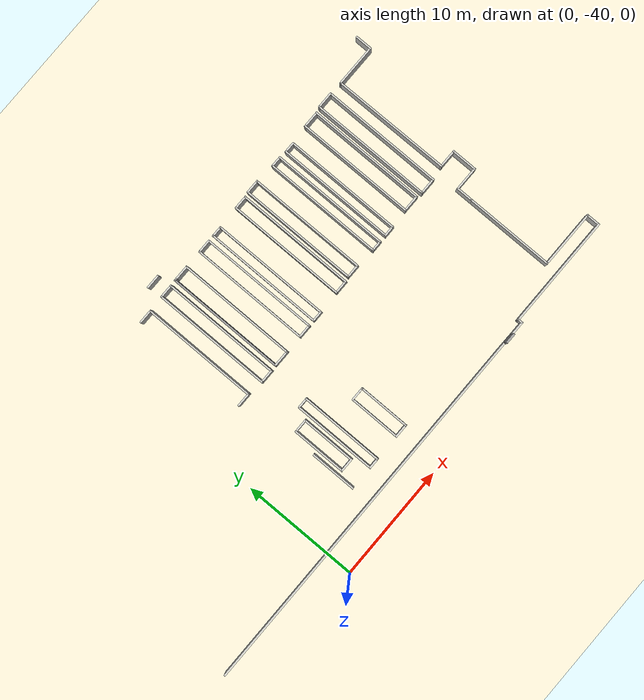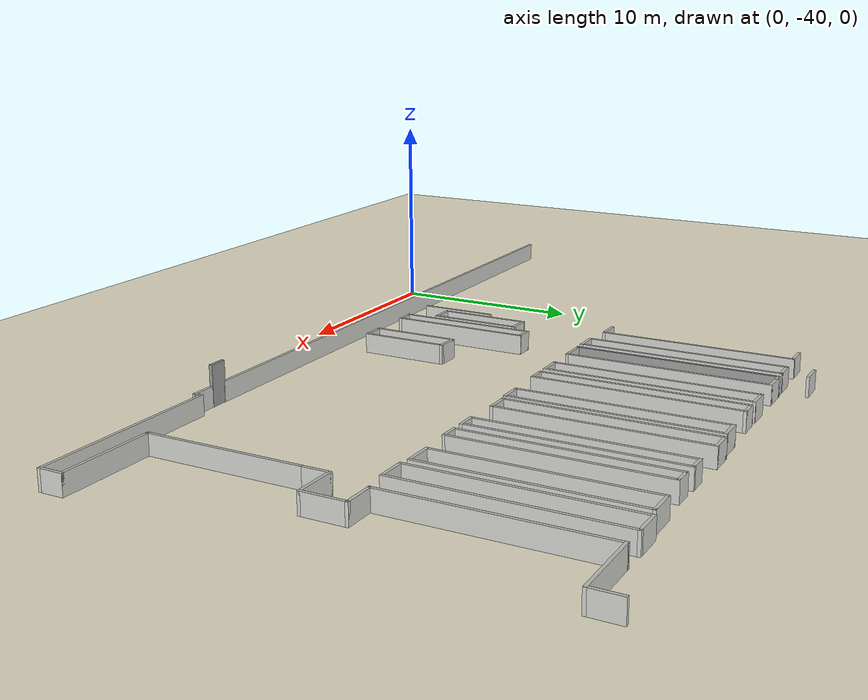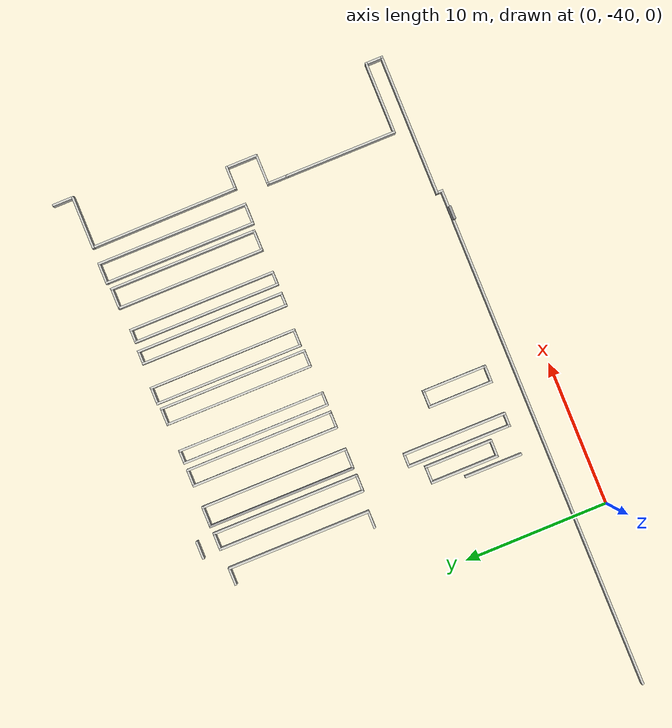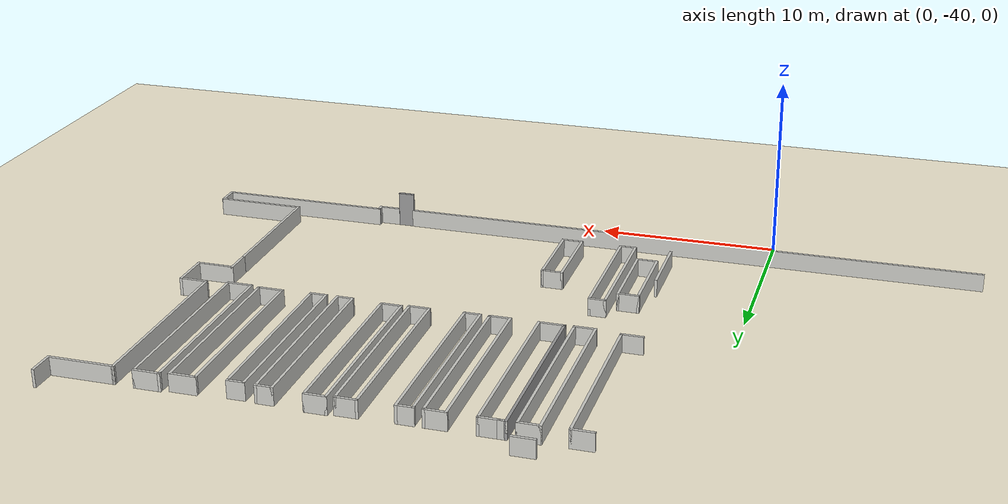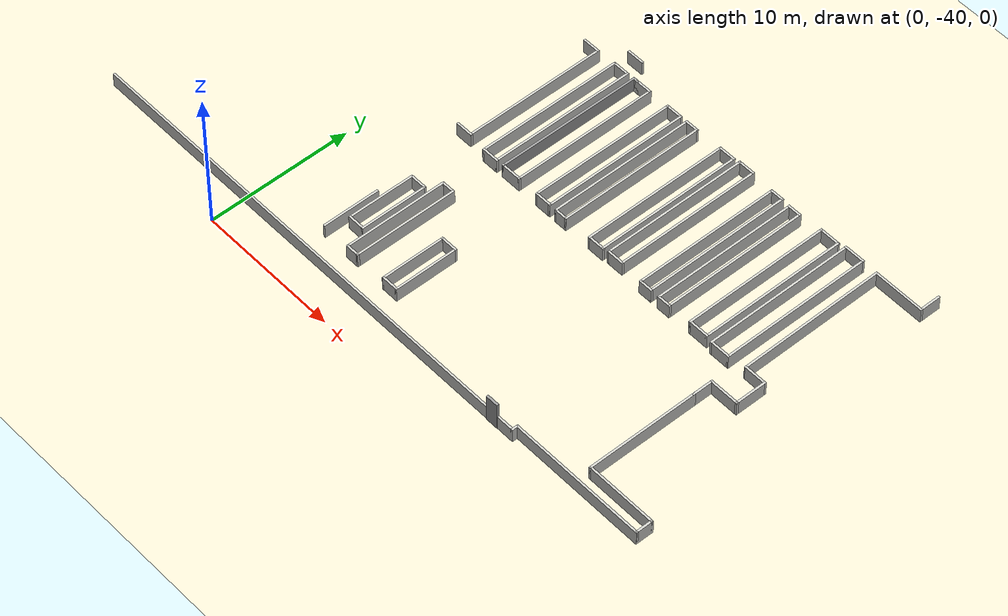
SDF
<sdf version="1.7">
 <world name="default">
  <model name="ground_plane">
   <static>1</static>
   <link name="link">
    <collision name="collision">
     <geometry><plane><normal>0 0 1</normal><size>100 100</size></plane></geometry>
     <surface><friction><ode><mu>100</mu><mu2>50</mu2></ode></friction></surface>
    </collision>
    <visual name="visual">
     <cast_shadows>0</cast_shadows>
     <geometry><plane><normal>0 0 1</normal><size>100 100</size></plane></geometry>
     <material>
      <ambient>0.85 0.82 0.72 1</ambient>
      <diffuse>0.95 0.92 0.82 1</diffuse>
      <specular>0.05 0.05 0.05 1</specular>
     </material>
    </visual>
   </link>
  </model>
  <model name="warehouse">
   <pose>0.004046 2.00696 0 0 -0 0</pose>
   <link name="Door_1">
    <collision name="Door_1_Collision">
     <geometry><box><size>0.9 0.17 2</size></box></geometry>
     <pose>0 0 1 0 -0 0</pose>
    </collision>
    <visual name="Door_1_Visual">
     <pose>0 0 1 0 -0 0</pose>
     <geometry><box><size>0.9 0.17 2</size></box></geometry>
     <material>
      <script><uri>file://media/materials/scripts/gazebo.material</uri><name>Gazebo/Grey</name></script>
     </material>
    </visual>
    <pose>21.5476 -39.6968 0 0 -0 0</pose>
   </link>
   <link name="Wall_460">
    <collision name="Wall_460_Collision">
     <geometry><box><size>4 0.15 1</size></box></geometry>
     <pose>0 0 0.5 0 -0 0</pose>
    </collision>
    <visual name="Wall_460_Visual">
     <pose>0 0 0.5 0 -0 0</pose>
     <geometry><box><size>4 0.15 1</size></box></geometry>
     <material>
      <script><uri>file://media/materials/scripts/gazebo.material</uri><name>Gazebo/CeilingTiled</name></script>
      <ambient>1 1 1 1</ambient>
     </material>
     <meta><layer>0</layer></meta>
    </visual>
    <pose>5.19796 -36.0055 0 0 -0 -1.5708</pose>
   </link>
   <link name="Wall_464">
    <collision name="Wall_464_Collision">
     <geometry><box><size>4.75 0.15 1</size></box></geometry>
     <pose>0 0 0.5 0 -0 0</pose>
    </collision>
    <visual name="Wall_464_Visual">
     <pose>0 0 0.5 0 -0 0</pose>
     <geometry><box><size>4.75 0.15 1</size></box></geometry>
     <material>
      <script><uri>file://media/materials/scripts/gazebo.material</uri><name>Gazebo/CeilingTiled</name></script>
      <ambient>1 1 1 1</ambient>
     </material>
     <meta><layer>0</layer></meta>
    </visual>
    <pose>5.67496 -34.1615 0 0 -0 -1.5708</pose>
   </link>
   <link name="Wall_465">
    <collision name="Wall_465_Collision">
     <geometry><box><size>1.25 0.15 1</size></box></geometry>
     <pose>0 0 0.5 0 -0 0</pose>
    </collision>
    <visual name="Wall_465_Visual">
     <pose>0 0 0.5 0 -0 0</pose>
     <geometry><box><size>1.25 0.15 1</size></box></geometry>
     <material>
      <script><uri>file://media/materials/scripts/gazebo.material</uri><name>Gazebo/CeilingTiled</name></script>
      <ambient>1 1 1 1</ambient>
     </material>
     <meta><layer>0</layer></meta>
    </visual>
    <pose>6.22496 -36.4615 0 0 -0 0</pose>
   </link>
   <link name="Wall_466">
    <collision name="Wall_466_Collision">
     <geometry><box><size>4.75 0.15 1</size></box></geometry>
     <pose>0 0 0.5 0 -0 0</pose>
    </collision>
    <visual name="Wall_466_Visual">
     <pose>0 0 0.5 0 -0 0</pose>
     <geometry><box><size>4.75 0.15 1</size></box></geometry>
     <material>
      <script><uri>file://media/materials/scripts/gazebo.material</uri><name>Gazebo/CeilingTiled</name></script>
      <ambient>1 1 1 1</ambient>
     </material>
     <meta><layer>0</layer></meta>
    </visual>
    <pose>6.77496 -34.1615 0 0 -0 1.5708</pose>
   </link>
   <link name="Wall_467">
    <collision name="Wall_467_Collision">
     <geometry><box><size>1.25 0.15 1</size></box></geometry>
     <pose>0 0 0.5 0 -0 0</pose>
    </collision>
    <visual name="Wall_467_Visual">
     <pose>0 0 0.5 0 -0 0</pose>
     <geometry><box><size>1.25 0.15 1</size></box></geometry>
     <material>
      <script><uri>file://media/materials/scripts/gazebo.material</uri><name>Gazebo/CeilingTiled</name></script>
      <ambient>1 1 1 1</ambient>
     </material>
     <meta><layer>0</layer></meta>
    </visual>
    <pose>6.22496 -31.8615 0 0 -0 3.14159</pose>
   </link>
   <link name="Wall_469">
    <collision name="Wall_469_Collision">
     <geometry><box><size>1 0.15 1</size></box></geometry>
     <pose>0 0 0.5 0 -0 0</pose>
    </collision>
    <visual name="Wall_469_Visual">
     <pose>0 0 0.5 0 -0 0</pose>
     <geometry><box><size>1 0.15 1</size></box></geometry>
     <material>
      <script><uri>file://media/materials/scripts/gazebo.material</uri><name>Gazebo/CeilingTiled</name></script>
      <ambient>1 1 1 1</ambient>
     </material>
     <meta><layer>0</layer></meta>
    </visual>
    <pose>7.66096 -30.8565 0 0 -0 0</pose>
   </link>
   <link name="Wall_470">
    <collision name="Wall_470_Collision">
     <geometry><box><size>7.25 0.15 1</size></box></geometry>
     <pose>0 0 0.5 0 -0 0</pose>
    </collision>
    <visual name="Wall_470_Visual">
     <pose>0 0 0.5 0 -0 0</pose>
     <geometry><box><size>7.25 0.15 1</size></box></geometry>
     <material>
      <script><uri>file://media/materials/scripts/gazebo.material</uri><name>Gazebo/CeilingTiled</name></script>
      <ambient>1 1 1 1</ambient>
     </material>
     <meta><layer>0</layer></meta>
    </visual>
    <pose>8.08596 -34.4065 0 0 -0 -1.5708</pose>
   </link>
   <link name="Wall_471">
    <collision name="Wall_471_Collision">
     <geometry><box><size>1 0.15 1</size></box></geometry>
     <pose>0 0 0.5 0 -0 0</pose>
    </collision>
    <visual name="Wall_471_Visual">
     <pose>0 0 0.5 0 -0 0</pose>
     <geometry><box><size>1 0.15 1</size></box></geometry>
     <material>
      <script><uri>file://media/materials/scripts/gazebo.material</uri><name>Gazebo/CeilingTiled</name></script>
      <ambient>1 1 1 1</ambient>
     </material>
     <meta><layer>0</layer></meta>
    </visual>
    <pose>7.66096 -37.9565 0 0 -0 3.14159</pose>
   </link>
   <link name="Wall_472">
    <collision name="Wall_472_Collision">
     <geometry><box><size>7.25 0.15 1</size></box></geometry>
     <pose>0 0 0.5 0 -0 0</pose>
    </collision>
    <visual name="Wall_472_Visual">
     <pose>0 0 0.5 0 -0 0</pose>
     <geometry><box><size>7.25 0.15 1</size></box></geometry>
     <material>
      <script><uri>file://media/materials/scripts/gazebo.material</uri><name>Gazebo/CeilingTiled</name></script>
      <ambient>1 1 1 1</ambient>
     </material>
     <meta><layer>0</layer></meta>
    </visual>
    <pose>7.23596 -34.4065 0 0 -0 1.5708</pose>
   </link>
   <link name="Wall_479">
    <collision name="Wall_479_Collision">
     <geometry><box><size>4.5 0.15 1</size></box></geometry>
     <pose>0 0 0.5 0 -0 0</pose>
    </collision>
    <visual name="Wall_479_Visual">
     <pose>0 0 0.5 0 -0 0</pose>
     <geometry><box><size>4.5 0.15 1</size></box></geometry>
     <material>
      <script><uri>file://media/materials/scripts/gazebo.material</uri><name>Gazebo/CeilingTiled</name></script>
      <ambient>1 1 1 1</ambient>
     </material>
     <meta><layer>0</layer></meta>
    </visual>
    <pose>10.341 -35.7735 0 0 -0 -1.5708</pose>
   </link>
   <link name="Wall_480">
    <collision name="Wall_480_Collision">
     <geometry><box><size>1.25 0.15 1</size></box></geometry>
     <pose>0 0 0.5 0 -0 0</pose>
    </collision>
    <visual name="Wall_480_Visual">
     <pose>0 0 0.5 0 -0 0</pose>
     <geometry><box><size>1.25 0.15 1</size></box></geometry>
     <material>
      <script><uri>file://media/materials/scripts/gazebo.material</uri><name>Gazebo/CeilingTiled</name></script>
      <ambient>1 1 1 1</ambient>
     </material>
     <meta><layer>0</layer></meta>
    </visual>
    <pose>10.891 -37.9485 0 0 -0 0</pose>
   </link>
   <link name="Wall_481">
    <collision name="Wall_481_Collision">
     <geometry><box><size>4.5 0.15 1</size></box></geometry>
     <pose>0 0 0.5 0 -0 0</pose>
    </collision>
    <visual name="Wall_481_Visual">
     <pose>0 0 0.5 0 -0 0</pose>
     <geometry><box><size>4.5 0.15 1</size></box></geometry>
     <material>
      <script><uri>file://media/materials/scripts/gazebo.material</uri><name>Gazebo/CeilingTiled</name></script>
      <ambient>1 1 1 1</ambient>
     </material>
     <meta><layer>0</layer></meta>
    </visual>
    <pose>11.441 -35.7735 0 0 -0 1.5708</pose>
   </link>
   <link name="Wall_482">
    <collision name="Wall_482_Collision">
     <geometry><box><size>1.25 0.15 1</size></box></geometry>
     <pose>0 0 0.5 0 -0 0</pose>
    </collision>
    <visual name="Wall_482_Visual">
     <pose>0 0 0.5 0 -0 0</pose>
     <geometry><box><size>1.25 0.15 1</size></box></geometry>
     <material>
      <script><uri>file://media/materials/scripts/gazebo.material</uri><name>Gazebo/CeilingTiled</name></script>
      <ambient>1 1 1 1</ambient>
     </material>
     <meta><layer>0</layer></meta>
    </visual>
    <pose>10.891 -33.5985 0 0 -0 3.14159</pose>
   </link>
   <link name="Wall_652">
    <collision name="Wall_652_Collision">
     <geometry><box><size>1.25 0.15 1</size></box></geometry>
     <pose>0 0 0.5 0 -0 0</pose>
    </collision>
    <visual name="Wall_652_Visual">
     <pose>0 0 0.5 0 -0 0</pose>
     <geometry><box><size>1.25 0.15 1</size></box></geometry>
     <material>
      <script><uri>file://media/materials/scripts/gazebo.material</uri><name>Gazebo/CeilingTiled</name></script>
      <ambient>1 1 1 1</ambient>
     </material>
     <meta><layer>0</layer></meta>
    </visual>
    <pose>4.94396 -17.3955 0 0 -0 0</pose>
   </link>
   <link name="Wall_653">
    <collision name="Wall_653_Collision">
     <geometry><box><size>10 0.15 1</size></box></geometry>
     <pose>0 0 0.5 0 -0 0</pose>
    </collision>
    <visual name="Wall_653_Visual">
     <pose>0 0 0.5 0 -0 0</pose>
     <geometry><box><size>10 0.15 1</size></box></geometry>
     <material>
      <script><uri>file://media/materials/scripts/gazebo.material</uri><name>Gazebo/CeilingTiled</name></script>
      <ambient>1 1 1 1</ambient>
     </material>
     <meta><layer>0</layer></meta>
    </visual>
    <pose>5.49396 -22.3205 0 0 -0 -1.5708</pose>
   </link>
   <link name="Wall_656">
    <collision name="Wall_656_Collision">
     <geometry><box><size>1.25 0.15 1</size></box></geometry>
     <pose>0 0 0.5 0 -0 0</pose>
    </collision>
    <visual name="Wall_656_Visual">
     <pose>0 0 0.5 0 -0 0</pose>
     <geometry><box><size>1.25 0.15 1</size></box></geometry>
     <material>
      <script><uri>file://media/materials/scripts/gazebo.material</uri><name>Gazebo/CeilingTiled</name></script>
      <ambient>1 1 1 1</ambient>
     </material>
     <meta><layer>0</layer></meta>
    </visual>
    <pose>4.94396 -27.2455 0 0 -0 3.14159</pose>
   </link>
   <link name="Wall_70">
    <collision name="Wall_70_Collision">
     <geometry><box><size>1.5 0.15 1</size></box></geometry>
     <pose>0 0 0.5 0 -0 0</pose>
    </collision>
    <visual name="Wall_70_Visual">
     <pose>0 0 0.5 0 -0 0</pose>
     <geometry><box><size>1.5 0.15 1</size></box></geometry>
     <material>
      <script><uri>file://media/materials/scripts/gazebo.material</uri><name>Gazebo/CeilingTiled</name></script>
      <ambient>1 1 1 1</ambient>
     </material>
     <meta><layer>0</layer></meta>
    </visual>
    <pose>31.928 -16.4115 0 0 -0 -1.5708</pose>
   </link>
   <link name="Wall_71">
    <collision name="Wall_71_Collision">
     <geometry><box><size>3.69044 0.15 1</size></box></geometry>
     <pose>0 0 0.5 0 -0 0</pose>
    </collision>
    <visual name="Wall_71_Visual">
     <pose>0 0 0.5 0 -0 0</pose>
     <geometry><box><size>3.69044 0.15 1</size></box></geometry>
     <material>
      <script><uri>file://media/materials/scripts/gazebo.material</uri><name>Gazebo/CeilingTiled</name></script>
      <ambient>1 1 1 1</ambient>
     </material>
     <meta><layer>0</layer></meta>
    </visual>
    <pose>30.158 -17.0865 0 0 -0 3.14159</pose>
   </link>
   <link name="Wall_72">
    <collision name="Wall_72_Collision">
     <geometry><box><size>10.25 0.15 1</size></box></geometry>
     <pose>0 0 0.5 0 -0 0</pose>
    </collision>
    <visual name="Wall_72_Visual">
     <pose>0 0 0.5 0 -0 0</pose>
     <geometry><box><size>10.25 0.15 1</size></box></geometry>
     <material>
      <script><uri>file://media/materials/scripts/gazebo.material</uri><name>Gazebo/CeilingTiled</name></script>
      <ambient>1 1 1 1</ambient>
     </material>
     <meta><layer>0</layer></meta>
    </visual>
    <pose>28.4175 -22.1365 0 0 -0 -1.56496</pose>
   </link>
   <link name="Wall_73">
    <collision name="Wall_73_Collision">
     <geometry><box><size>1.63173 0.15 1</size></box></geometry>
     <pose>0 0 0.5 0 -0 0</pose>
    </collision>
    <visual name="Wall_73_Visual">
     <pose>0 0 0.5 0 -0 0</pose>
     <geometry><box><size>1.63173 0.15 1</size></box></geometry>
     <material>
      <script><uri>file://media/materials/scripts/gazebo.material</uri><name>Gazebo/CeilingTiled</name></script>
      <ambient>1 1 1 1</ambient>
     </material>
     <meta><layer>0</layer></meta>
    </visual>
    <pose>29.1875 -27.1865 0 0 -0 0</pose>
   </link>
   <link name="Wall_75">
    <collision name="Wall_75_Collision">
     <geometry><box><size>2.25 0.15 1</size></box></geometry>
     <pose>0 0 0.5 0 -0 0</pose>
    </collision>
    <visual name="Wall_75_Visual">
     <pose>0 0 0.5 0 -0 0</pose>
     <geometry><box><size>2.25 0.15 1</size></box></geometry>
     <material>
      <script><uri>file://media/materials/scripts/gazebo.material</uri><name>Gazebo/CeilingTiled</name></script>
      <ambient>1 1 1 1</ambient>
     </material>
     <meta><layer>0</layer></meta>
    </visual>
    <pose>29.928 -28.2365 0 0 -0 -1.5708</pose>
   </link>
   <link name="Wall_804">
    <collision name="Wall_804_Collision">
     <geometry><box><size>1.25 0.15 1</size></box></geometry>
     <pose>0 0 0.5 0 -0 0</pose>
    </collision>
    <visual name="Wall_804_Visual">
     <pose>0 0 0.5 0 -0 0</pose>
     <geometry><box><size>1.25 0.15 1</size></box></geometry>
     <material>
      <script><uri>file://media/materials/scripts/gazebo.material</uri><name>Gazebo/CeilingTiled</name></script>
      <ambient>1 1 1 1</ambient>
     </material>
     <meta><layer>0</layer></meta>
    </visual>
    <pose>7.33296 -16.0735 0 0 -0 0</pose>
   </link>
   <link name="Wall_83">
    <collision name="Wall_83_Collision">
     <geometry><box><size>7.75 0.15 1</size></box></geometry>
     <pose>0 0 0.5 0 -0 0</pose>
    </collision>
    <visual name="Wall_83_Visual">
     <pose>0 0 0.5 0 -0 0</pose>
     <geometry><box><size>7.75 0.15 1</size></box></geometry>
     <material>
      <script><uri>file://media/materials/scripts/gazebo.material</uri><name>Gazebo/CeilingTiled</name></script>
      <ambient>1 1 1 1</ambient>
     </material>
     <meta><layer>0</layer></meta>
    </visual>
    <pose>27.928 -34.4365 0 0 -0 -1.5708</pose>
   </link>
   <link name="Wall_84">
    <collision name="Wall_84_Collision">
     <geometry><box><size>5 0.15 1</size></box></geometry>
     <pose>0 0 0.5 0 -0 0</pose>
    </collision>
    <visual name="Wall_84_Visual">
     <pose>0 0 0.5 0 -0 0</pose>
     <geometry><box><size>5 0.15 1</size></box></geometry>
     <material>
      <script><uri>file://media/materials/scripts/gazebo.material</uri><name>Gazebo/CeilingTiled</name></script>
      <ambient>1 1 1 1</ambient>
     </material>
     <meta><layer>0</layer></meta>
    </visual>
    <pose>30.353 -38.2365 0 0 -0 0</pose>
   </link>
   <link name="Wall_85">
    <collision name="Wall_85_Collision">
     <geometry><box><size>1.25 0.15 1</size></box></geometry>
     <pose>0 0 0.5 0 -0 0</pose>
    </collision>
    <visual name="Wall_85_Visual">
     <pose>0 0 0.5 0 -0 0</pose>
     <geometry><box><size>1.25 0.15 1</size></box></geometry>
     <material>
      <script><uri>file://media/materials/scripts/gazebo.material</uri><name>Gazebo/CeilingTiled</name></script>
      <ambient>1 1 1 1</ambient>
     </material>
     <meta><layer>0</layer></meta>
    </visual>
    <pose>32.778 -38.7865 0 0 -0 -1.5708</pose>
   </link>
   <link name="Wall_86">
    <collision name="Wall_86_Collision">
     <geometry><box><size>9.75 0.15 1</size></box></geometry>
     <pose>0 0 0.5 0 -0 0</pose>
    </collision>
    <visual name="Wall_86_Visual">
     <pose>0 0 0.5 0 -0 0</pose>
     <geometry><box><size>9.75 0.15 1</size></box></geometry>
     <material>
      <script><uri>file://media/materials/scripts/gazebo.material</uri><name>Gazebo/CeilingTiled</name></script>
      <ambient>1 1 1 1</ambient>
     </material>
     <meta><layer>0</layer></meta>
    </visual>
    <pose>27.978 -39.3365 0 0 -0 3.14159</pose>
   </link>
   <link name="Wall_87">
    <collision name="Wall_87_Collision">
     <geometry><box><size>0.5 0.15 1</size></box></geometry>
     <pose>0 0 0.5 0 -0 0</pose>
    </collision>
    <visual name="Wall_87_Visual">
     <pose>0 0 0.5 0 -0 0</pose>
     <geometry><box><size>0.5 0.15 1</size></box></geometry>
     <material>
      <script><uri>file://media/materials/scripts/gazebo.material</uri><name>Gazebo/CeilingTiled</name></script>
      <ambient>1 1 1 1</ambient>
     </material>
     <meta><layer>0</layer></meta>
    </visual>
    <pose>23.178 -39.5115 0 0 -0 -1.5708</pose>
   </link>
   <link name="Wall_871">
    <collision name="Wall_871_Collision">
     <geometry><box><size>1.25 0.15 1</size></box></geometry>
     <pose>0 0 0.5 0 -0 0</pose>
    </collision>
    <visual name="Wall_871_Visual">
     <pose>0 0 0.5 0 -0 0</pose>
     <geometry><box><size>1.25 0.15 1</size></box></geometry>
     <material>
      <script><uri>file://media/materials/scripts/gazebo.material</uri><name>Gazebo/CeilingTiled</name></script>
      <ambient>1 1 1 1</ambient>
     </material>
     <meta><layer>0</layer></meta>
    </visual>
    <pose>7.43096 -17.3325 0 0 -0 0</pose>
   </link>
   <link name="Wall_872">
    <collision name="Wall_872_Collision">
     <geometry><box><size>10.25 0.15 1</size></box></geometry>
     <pose>0 0 0.5 0 -0 0</pose>
    </collision>
    <visual name="Wall_872_Visual">
     <pose>0 0 0.5 0 -0 0</pose>
     <geometry><box><size>10.25 0.15 1</size></box></geometry>
     <material>
      <script><uri>file://media/materials/scripts/gazebo.material</uri><name>Gazebo/CeilingTiled</name></script>
      <ambient>1 1 1 1</ambient>
     </material>
     <meta><layer>0</layer></meta>
    </visual>
    <pose>7.98096 -22.3825 0 0 -0 -1.5708</pose>
   </link>
   <link name="Wall_875">
    <collision name="Wall_875_Collision">
     <geometry><box><size>1.25 0.15 1</size></box></geometry>
     <pose>0 0 0.5 0 -0 0</pose>
    </collision>
    <visual name="Wall_875_Visual">
     <pose>0 0 0.5 0 -0 0</pose>
     <geometry><box><size>1.25 0.15 1</size></box></geometry>
     <material>
      <script><uri>file://media/materials/scripts/gazebo.material</uri><name>Gazebo/CeilingTiled</name></script>
      <ambient>1 1 1 1</ambient>
     </material>
     <meta><layer>0</layer></meta>
    </visual>
    <pose>7.43096 -27.4325 0 0 -0 3.14159</pose>
   </link>
   <link name="Wall_876">
    <collision name="Wall_876_Collision">
     <geometry><box><size>10.25 0.15 1</size></box></geometry>
     <pose>0 0 0.5 0 -0 0</pose>
    </collision>
    <visual name="Wall_876_Visual">
     <pose>0 0 0.5 0 -0 0</pose>
     <geometry><box><size>10.25 0.15 1</size></box></geometry>
     <material>
      <script><uri>file://media/materials/scripts/gazebo.material</uri><name>Gazebo/CeilingTiled</name></script>
      <ambient>1 1 1 1</ambient>
     </material>
     <meta><layer>0</layer></meta>
    </visual>
    <pose>6.88096 -22.3825 0 0 -0 1.5708</pose>
   </link>
   <link name="Wall_878">
    <collision name="Wall_878_Collision">
     <geometry><box><size>1.25 0.15 1</size></box></geometry>
     <pose>0 0 0.5 0 -0 0</pose>
    </collision>
    <visual name="Wall_878_Visual">
     <pose>0 0 0.5 0 -0 0</pose>
     <geometry><box><size>1.25 0.15 1</size></box></geometry>
     <material>
      <script><uri>file://media/materials/scripts/gazebo.material</uri><name>Gazebo/CeilingTiled</name></script>
      <ambient>1 1 1 1</ambient>
     </material>
     <meta><layer>0</layer></meta>
    </visual>
    <pose>9.30896 -17.2995 0 0 -0 0</pose>
   </link>
   <link name="Wall_879">
    <collision name="Wall_879_Collision">
     <geometry><box><size>10.25 0.15 1</size></box></geometry>
     <pose>0 0 0.5 0 -0 0</pose>
    </collision>
    <visual name="Wall_879_Visual">
     <pose>0 0 0.5 0 -0 0</pose>
     <geometry><box><size>10.25 0.15 1</size></box></geometry>
     <material>
      <script><uri>file://media/materials/scripts/gazebo.material</uri><name>Gazebo/CeilingTiled</name></script>
      <ambient>1 1 1 1</ambient>
     </material>
     <meta><layer>0</layer></meta>
    </visual>
    <pose>9.85896 -22.3495 0 0 -0 -1.5708</pose>
   </link>
   <link name="Wall_88">
    <collision name="Wall_88_Collision">
     <geometry><box><size>1.25 0.15 1</size></box></geometry>
     <pose>0 0 0.5 0 -0 0</pose>
    </collision>
    <visual name="Wall_88_Visual">
     <pose>0 0 0.5 0 -0 0</pose>
     <geometry><box><size>1.25 0.15 1</size></box></geometry>
     <material>
      <script><uri>file://media/materials/scripts/gazebo.material</uri><name>Gazebo/CeilingTiled</name></script>
      <ambient>1 1 1 1</ambient>
     </material>
     <meta><layer>0</layer></meta>
    </visual>
    <pose>22.628 -39.6865 0 0 -0 3.14159</pose>
   </link>
   <link name="Wall_880">
    <collision name="Wall_880_Collision">
     <geometry><box><size>1.5 0.15 1</size></box></geometry>
     <pose>0 0 0.5 0 -0 0</pose>
    </collision>
    <visual name="Wall_880_Visual">
     <pose>0 0 0.5 0 -0 0</pose>
     <geometry><box><size>1.5 0.15 1</size></box></geometry>
     <material>
      <script><uri>file://media/materials/scripts/gazebo.material</uri><name>Gazebo/CeilingTiled</name></script>
      <ambient>1 1 1 1</ambient>
     </material>
     <meta><layer>0</layer></meta>
    </visual>
    <pose>9.18396 -27.3995 0 0 -0 3.14159</pose>
   </link>
   <link name="Wall_881">
    <collision name="Wall_881_Collision">
     <geometry><box><size>10.25 0.15 1</size></box></geometry>
     <pose>0 0 0.5 0 -0 0</pose>
    </collision>
    <visual name="Wall_881_Visual">
     <pose>0 0 0.5 0 -0 0</pose>
     <geometry><box><size>10.25 0.15 1</size></box></geometry>
     <material>
      <script><uri>file://media/materials/scripts/gazebo.material</uri><name>Gazebo/Grey</name></script>
      <ambient>1 1 1 1</ambient>
     </material>
     <meta><layer>0</layer></meta>
    </visual>
    <pose>8.50896 -22.3495 0 0 -0 1.5708</pose>
   </link>
   <link name="Wall_882">
    <collision name="Wall_882_Collision">
     <geometry><box><size>0.5 0.15 1</size></box></geometry>
     <pose>0 0 0.5 0 -0 0</pose>
    </collision>
    <visual name="Wall_882_Visual">
     <pose>0 0 0.5 0 -0 0</pose>
     <geometry><box><size>0.5 0.15 1</size></box></geometry>
     <material>
      <script><uri>file://media/materials/scripts/gazebo.material</uri><name>Gazebo/CeilingTiled</name></script>
      <ambient>1 1 1 1</ambient>
     </material>
     <meta><layer>0</layer></meta>
    </visual>
    <pose>8.68396 -17.2995 0 0 -0 0</pose>
   </link>
   <link name="Wall_884">
    <collision name="Wall_884_Collision">
     <geometry><box><size>10.25 0.15 1</size></box></geometry>
     <pose>0 0 0.5 0 -0 0</pose>
    </collision>
    <visual name="Wall_884_Visual">
     <pose>0 0 0.5 0 -0 0</pose>
     <geometry><box><size>10.25 0.15 1</size></box></geometry>
     <material>
      <script><uri>file://media/materials/scripts/gazebo.material</uri><name>Gazebo/CeilingTiled</name></script>
      <ambient>1 1 1 1</ambient>
     </material>
     <meta><layer>0</layer></meta>
    </visual>
    <pose>11.395 -22.3495 0 0 -0 -1.5708</pose>
   </link>
   <link name="Wall_885">
    <collision name="Wall_885_Collision">
     <geometry><box><size>1.25 0.15 1</size></box></geometry>
     <pose>0 0 0.5 0 -0 0</pose>
    </collision>
    <visual name="Wall_885_Visual">
     <pose>0 0 0.5 0 -0 0</pose>
     <geometry><box><size>1.25 0.15 1</size></box></geometry>
     <material>
      <script><uri>file://media/materials/scripts/gazebo.material</uri><name>Gazebo/CeilingTiled</name></script>
      <ambient>1 1 1 1</ambient>
     </material>
     <meta><layer>0</layer></meta>
    </visual>
    <pose>11.945 -27.3995 0 0 -0 0</pose>
   </link>
   <link name="Wall_886">
    <collision name="Wall_886_Collision">
     <geometry><box><size>10.25 0.15 1</size></box></geometry>
     <pose>0 0 0.5 0 -0 0</pose>
    </collision>
    <visual name="Wall_886_Visual">
     <pose>0 0 0.5 0 -0 0</pose>
     <geometry><box><size>10.25 0.15 1</size></box></geometry>
     <material>
      <script><uri>file://media/materials/scripts/gazebo.material</uri><name>Gazebo/CeilingTiled</name></script>
      <ambient>1 1 1 1</ambient>
     </material>
     <meta><layer>0</layer></meta>
    </visual>
    <pose>12.495 -22.3495 0 0 -0 1.5708</pose>
   </link>
   <link name="Wall_887">
    <collision name="Wall_887_Collision">
     <geometry><box><size>1.25 0.15 1</size></box></geometry>
     <pose>0 0 0.5 0 -0 0</pose>
    </collision>
    <visual name="Wall_887_Visual">
     <pose>0 0 0.5 0 -0 0</pose>
     <geometry><box><size>1.25 0.15 1</size></box></geometry>
     <material>
      <script><uri>file://media/materials/scripts/gazebo.material</uri><name>Gazebo/CeilingTiled</name></script>
      <ambient>1 1 1 1</ambient>
     </material>
     <meta><layer>0</layer></meta>
    </visual>
    <pose>11.945 -17.2995 0 0 -0 3.14159</pose>
   </link>
   <link name="Wall_889">
    <collision name="Wall_889_Collision">
     <geometry><box><size>10.25 0.15 1</size></box></geometry>
     <pose>0 0 0.5 0 -0 0</pose>
    </collision>
    <visual name="Wall_889_Visual">
     <pose>0 0 0.5 0 -0 0</pose>
     <geometry><box><size>10.25 0.15 1</size></box></geometry>
     <material>
      <script><uri>file://media/materials/scripts/gazebo.material</uri><name>Gazebo/CeilingTiled</name></script>
      <ambient>1 1 1 1</ambient>
     </material>
     <meta><layer>0</layer></meta>
    </visual>
    <pose>13.01 -22.3495 0 0 -0 -1.5708</pose>
   </link>
   <link name="Wall_890">
    <collision name="Wall_890_Collision">
     <geometry><box><size>1 0.15 1</size></box></geometry>
     <pose>0 0 0.5 0 -0 0</pose>
    </collision>
    <visual name="Wall_890_Visual">
     <pose>0 0 0.5 0 -0 0</pose>
     <geometry><box><size>1 0.15 1</size></box></geometry>
     <material>
      <script><uri>file://media/materials/scripts/gazebo.material</uri><name>Gazebo/CeilingTiled</name></script>
      <ambient>1 1 1 1</ambient>
     </material>
     <meta><layer>0</layer></meta>
    </visual>
    <pose>13.435 -27.3995 0 0 -0 0</pose>
   </link>
   <link name="Wall_891">
    <collision name="Wall_891_Collision">
     <geometry><box><size>10.25 0.15 1</size></box></geometry>
     <pose>0 0 0.5 0 -0 0</pose>
    </collision>
    <visual name="Wall_891_Visual">
     <pose>0 0 0.5 0 -0 0</pose>
     <geometry><box><size>10.25 0.15 1</size></box></geometry>
     <material>
      <script><uri>file://media/materials/scripts/gazebo.material</uri><name>Gazebo/CeilingTiled</name></script>
      <ambient>1 1 1 1</ambient>
     </material>
     <meta><layer>0</layer></meta>
    </visual>
    <pose>13.86 -22.3495 0 0 -0 1.5708</pose>
   </link>
   <link name="Wall_892">
    <collision name="Wall_892_Collision">
     <geometry><box><size>1 0.15 1</size></box></geometry>
     <pose>0 0 0.5 0 -0 0</pose>
    </collision>
    <visual name="Wall_892_Visual">
     <pose>0 0 0.5 0 -0 0</pose>
     <geometry><box><size>1 0.15 1</size></box></geometry>
     <material>
      <script><uri>file://media/materials/scripts/gazebo.material</uri><name>Gazebo/CeilingTiled</name></script>
      <ambient>1 1 1 1</ambient>
     </material>
     <meta><layer>0</layer></meta>
    </visual>
    <pose>13.435 -17.2995 0 0 -0 3.14159</pose>
   </link>
   <link name="Wall_894">
    <collision name="Wall_894_Collision">
     <geometry><box><size>1.25 0.15 1</size></box></geometry>
     <pose>0 0 0.5 0 -0 0</pose>
    </collision>
    <visual name="Wall_894_Visual">
     <pose>0 0 0.5 0 -0 0</pose>
     <geometry><box><size>1.25 0.15 1</size></box></geometry>
     <material>
      <script><uri>file://media/materials/scripts/gazebo.material</uri><name>Gazebo/CeilingTiled</name></script>
      <ambient>1 1 1 1</ambient>
     </material>
     <meta><layer>0</layer></meta>
    </visual>
    <pose>16.327 -17.2335 0 0 -0 0</pose>
   </link>
   <link name="Wall_895">
    <collision name="Wall_895_Collision">
     <geometry><box><size>10.25 0.15 1</size></box></geometry>
     <pose>0 0 0.5 0 -0 0</pose>
    </collision>
    <visual name="Wall_895_Visual">
     <pose>0 0 0.5 0 -0 0</pose>
     <geometry><box><size>10.25 0.15 1</size></box></geometry>
     <material>
      <script><uri>file://media/materials/scripts/gazebo.material</uri><name>Gazebo/CeilingTiled</name></script>
      <ambient>1 1 1 1</ambient>
     </material>
     <meta><layer>0</layer></meta>
    </visual>
    <pose>16.877 -22.2835 0 0 -0 -1.5708</pose>
   </link>
   <link name="Wall_896">
    <collision name="Wall_896_Collision">
     <geometry><box><size>1.25 0.15 1</size></box></geometry>
     <pose>0 0 0.5 0 -0 0</pose>
    </collision>
    <visual name="Wall_896_Visual">
     <pose>0 0 0.5 0 -0 0</pose>
     <geometry><box><size>1.25 0.15 1</size></box></geometry>
     <material>
      <script><uri>file://media/materials/scripts/gazebo.material</uri><name>Gazebo/CeilingTiled</name></script>
      <ambient>1 1 1 1</ambient>
     </material>
     <meta><layer>0</layer></meta>
    </visual>
    <pose>16.327 -27.3335 0 0 -0 3.14159</pose>
   </link>
   <link name="Wall_897">
    <collision name="Wall_897_Collision">
     <geometry><box><size>10.25 0.15 1</size></box></geometry>
     <pose>0 0 0.5 0 -0 0</pose>
    </collision>
    <visual name="Wall_897_Visual">
     <pose>0 0 0.5 0 -0 0</pose>
     <geometry><box><size>10.25 0.15 1</size></box></geometry>
     <material>
      <script><uri>file://media/materials/scripts/gazebo.material</uri><name>Gazebo/CeilingTiled</name></script>
      <ambient>1 1 1 1</ambient>
     </material>
     <meta><layer>0</layer></meta>
    </visual>
    <pose>15.777 -22.2835 0 0 -0 1.5708</pose>
   </link>
   <link name="Wall_899">
    <collision name="Wall_899_Collision">
     <geometry><box><size>1.25 0.15 1</size></box></geometry>
     <pose>0 0 0.5 0 -0 0</pose>
    </collision>
    <visual name="Wall_899_Visual">
     <pose>0 0 0.5 0 -0 0</pose>
     <geometry><box><size>1.25 0.15 1</size></box></geometry>
     <material>
      <script><uri>file://media/materials/scripts/gazebo.material</uri><name>Gazebo/CeilingTiled</name></script>
      <ambient>1 1 1 1</ambient>
     </material>
     <meta><layer>0</layer></meta>
    </visual>
    <pose>17.843 -17.1355 0 0 -0 0</pose>
   </link>
   <link name="Wall_900">
    <collision name="Wall_900_Collision">
     <geometry><box><size>10.25 0.15 1</size></box></geometry>
     <pose>0 0 0.5 0 -0 0</pose>
    </collision>
    <visual name="Wall_900_Visual">
     <pose>0 0 0.5 0 -0 0</pose>
     <geometry><box><size>10.25 0.15 1</size></box></geometry>
     <material>
      <script><uri>file://media/materials/scripts/gazebo.material</uri><name>Gazebo/CeilingTiled</name></script>
      <ambient>1 1 1 1</ambient>
     </material>
     <meta><layer>0</layer></meta>
    </visual>
    <pose>18.393 -22.1855 0 0 -0 -1.5708</pose>
   </link>
   <link name="Wall_901">
    <collision name="Wall_901_Collision">
     <geometry><box><size>1.25 0.15 1</size></box></geometry>
     <pose>0 0 0.5 0 -0 0</pose>
    </collision>
    <visual name="Wall_901_Visual">
     <pose>0 0 0.5 0 -0 0</pose>
     <geometry><box><size>1.25 0.15 1</size></box></geometry>
     <material>
      <script><uri>file://media/materials/scripts/gazebo.material</uri><name>Gazebo/CeilingTiled</name></script>
      <ambient>1 1 1 1</ambient>
     </material>
     <meta><layer>0</layer></meta>
    </visual>
    <pose>17.843 -27.2355 0 0 -0 3.14159</pose>
   </link>
   <link name="Wall_902">
    <collision name="Wall_902_Collision">
     <geometry><box><size>10.25 0.15 1</size></box></geometry>
     <pose>0 0 0.5 0 -0 0</pose>
    </collision>
    <visual name="Wall_902_Visual">
     <pose>0 0 0.5 0 -0 0</pose>
     <geometry><box><size>10.25 0.15 1</size></box></geometry>
     <material>
      <script><uri>file://media/materials/scripts/gazebo.material</uri><name>Gazebo/CeilingTiled</name></script>
      <ambient>1 1 1 1</ambient>
     </material>
     <meta><layer>0</layer></meta>
    </visual>
    <pose>17.293 -22.1855 0 0 -0 1.5708</pose>
   </link>
   <link name="Wall_905">
    <collision name="Wall_905_Collision">
     <geometry><box><size>10.25 0.15 1</size></box></geometry>
     <pose>0 0 0.5 0 -0 0</pose>
    </collision>
    <visual name="Wall_905_Visual">
     <pose>0 0 0.5 0 -0 0</pose>
     <geometry><box><size>10.25 0.15 1</size></box></geometry>
     <material>
      <script><uri>file://media/materials/scripts/gazebo.material</uri><name>Gazebo/CeilingTiled</name></script>
      <ambient>1 1 1 1</ambient>
     </material>
     <meta><layer>0</layer></meta>
    </visual>
    <pose>20.93 -22.3165 0 0 -0 -1.5708</pose>
   </link>
   <link name="Wall_906">
    <collision name="Wall_906_Collision">
     <geometry><box><size>1 0.15 1</size></box></geometry>
     <pose>0 0 0.5 0 -0 0</pose>
    </collision>
    <visual name="Wall_906_Visual">
     <pose>0 0 0.5 0 -0 0</pose>
     <geometry><box><size>1 0.15 1</size></box></geometry>
     <material>
      <script><uri>file://media/materials/scripts/gazebo.material</uri><name>Gazebo/CeilingTiled</name></script>
      <ambient>1 1 1 1</ambient>
     </material>
     <meta><layer>0</layer></meta>
    </visual>
    <pose>20.505 -27.3665 0 0 -0 3.14159</pose>
   </link>
   <link name="Wall_909">
    <collision name="Wall_909_Collision">
     <geometry><box><size>10.25 0.15 1</size></box></geometry>
     <pose>0 0 0.5 0 -0 0</pose>
    </collision>
    <visual name="Wall_909_Visual">
     <pose>0 0 0.5 0 -0 0</pose>
     <geometry><box><size>10.25 0.15 1</size></box></geometry>
     <material>
      <script><uri>file://media/materials/scripts/gazebo.material</uri><name>Gazebo/CeilingTiled</name></script>
      <ambient>1 1 1 1</ambient>
     </material>
     <meta><layer>0</layer></meta>
    </visual>
    <pose>20.08 -22.3165 0 0 -0 1.5708</pose>
   </link>
   <link name="Wall_91">
    <collision name="Wall_91_Collision">
     <geometry><box><size>33 0.15 1</size></box></geometry>
     <pose>0 0 0.5 0 -0 0</pose>
    </collision>
    <visual name="Wall_91_Visual">
     <pose>0 0 0.5 0 -0 0</pose>
     <geometry><box><size>33 0.15 1</size></box></geometry>
     <material>
      <script><uri>file://media/materials/scripts/gazebo.material</uri><name>Gazebo/CeilingTiled</name></script>
      <ambient>1 1 1 1</ambient>
     </material>
     <meta><layer>0</layer></meta>
    </visual>
    <pose>4.67796 -39.6715 0 0 -0 3.14159</pose>
   </link>
   <link name="Wall_910">
    <collision name="Wall_910_Collision">
     <geometry><box><size>1 0.15 1</size></box></geometry>
     <pose>0 0 0.5 0 -0 0</pose>
    </collision>
    <visual name="Wall_910_Visual">
     <pose>0 0 0.5 0 -0 0</pose>
     <geometry><box><size>1 0.15 1</size></box></geometry>
     <material>
      <script><uri>file://media/materials/scripts/gazebo.material</uri><name>Gazebo/CeilingTiled</name></script>
      <ambient>1 1 1 1</ambient>
     </material>
     <meta><layer>0</layer></meta>
    </visual>
    <pose>20.505 -17.2665 0 0 -0 0</pose>
   </link>
   <link name="Wall_912">
    <collision name="Wall_912_Collision">
     <geometry><box><size>1 0.15 1</size></box></geometry>
     <pose>0 0 0.5 0 -0 0</pose>
    </collision>
    <visual name="Wall_912_Visual">
     <pose>0 0 0.5 0 -0 0</pose>
     <geometry><box><size>1 0.15 1</size></box></geometry>
     <material>
      <script><uri>file://media/materials/scripts/gazebo.material</uri><name>Gazebo/CeilingTiled</name></script>
      <ambient>1 1 1 1</ambient>
     </material>
     <meta><layer>0</layer></meta>
    </visual>
    <pose>22.002 -17.3325 0 0 -0 0</pose>
   </link>
   <link name="Wall_913">
    <collision name="Wall_913_Collision">
     <geometry><box><size>10.1835 0.15 1</size></box></geometry>
     <pose>0 0 0.5 0 -0 0</pose>
    </collision>
    <visual name="Wall_913_Visual">
     <pose>0 0 0.5 0 -0 0</pose>
     <geometry><box><size>10.1835 0.15 1</size></box></geometry>
     <material>
      <script><uri>file://media/materials/scripts/gazebo.material</uri><name>Gazebo/CeilingTiled</name></script>
      <ambient>1 1 1 1</ambient>
     </material>
     <meta><layer>0</layer></meta>
    </visual>
    <pose>22.427 -22.3495 0 0 -0 -1.5708</pose>
   </link>
   <link name="Wall_914">
    <collision name="Wall_914_Collision">
     <geometry><box><size>1 0.15 1</size></box></geometry>
     <pose>0 0 0.5 0 -0 0</pose>
    </collision>
    <visual name="Wall_914_Visual">
     <pose>0 0 0.5 0 -0 0</pose>
     <geometry><box><size>1 0.15 1</size></box></geometry>
     <material>
      <script><uri>file://media/materials/scripts/gazebo.material</uri><name>Gazebo/CeilingTiled</name></script>
      <ambient>1 1 1 1</ambient>
     </material>
     <meta><layer>0</layer></meta>
    </visual>
    <pose>22.002 -27.3665 0 0 -0 3.14159</pose>
   </link>
   <link name="Wall_915">
    <collision name="Wall_915_Collision">
     <geometry><box><size>10.1835 0.15 1</size></box></geometry>
     <pose>0 0 0.5 0 -0 0</pose>
    </collision>
    <visual name="Wall_915_Visual">
     <pose>0 0 0.5 0 -0 0</pose>
     <geometry><box><size>10.1835 0.15 1</size></box></geometry>
     <material>
      <script><uri>file://media/materials/scripts/gazebo.material</uri><name>Gazebo/CeilingTiled</name></script>
      <ambient>1 1 1 1</ambient>
     </material>
     <meta><layer>0</layer></meta>
    </visual>
    <pose>21.577 -22.3495 0 0 -0 1.5708</pose>
   </link>
   <link name="Wall_918">
    <collision name="Wall_918_Collision">
     <geometry><box><size>10.2168 0.15 1</size></box></geometry>
     <pose>0 0 0.5 0 -0 0</pose>
    </collision>
    <visual name="Wall_918_Visual">
     <pose>0 0 0.5 0 -0 0</pose>
     <geometry><box><size>10.2168 0.15 1</size></box></geometry>
     <material>
      <script><uri>file://media/materials/scripts/gazebo.material</uri><name>Gazebo/CeilingTiled</name></script>
      <ambient>1 1 1 1</ambient>
     </material>
     <meta><layer>0</layer></meta>
    </visual>
    <pose>24.048 -22.2341 0 0 -0 -1.5708</pose>
   </link>
   <link name="Wall_919">
    <collision name="Wall_919_Collision">
     <geometry><box><size>1.5 0.15 1</size></box></geometry>
     <pose>0 0 0.5 0 -0 0</pose>
    </collision>
    <visual name="Wall_919_Visual">
     <pose>0 0 0.5 0 -0 0</pose>
     <geometry><box><size>1.5 0.15 1</size></box></geometry>
     <material>
      <script><uri>file://media/materials/scripts/gazebo.material</uri><name>Gazebo/CeilingTiled</name></script>
      <ambient>1 1 1 1</ambient>
     </material>
     <meta><layer>0</layer></meta>
    </visual>
    <pose>24.723 -27.2675 0 0 -0 0</pose>
   </link>
   <link name="Wall_920">
    <collision name="Wall_920_Collision">
     <geometry><box><size>10.2168 0.15 1</size></box></geometry>
     <pose>0 0 0.5 0 -0 0</pose>
    </collision>
    <visual name="Wall_920_Visual">
     <pose>0 0 0.5 0 -0 0</pose>
     <geometry><box><size>10.2168 0.15 1</size></box></geometry>
     <material>
      <script><uri>file://media/materials/scripts/gazebo.material</uri><name>Gazebo/CeilingTiled</name></script>
      <ambient>1 1 1 1</ambient>
     </material>
     <meta><layer>0</layer></meta>
    </visual>
    <pose>25.398 -22.2341 0 0 -0 1.5708</pose>
   </link>
   <link name="Wall_921">
    <collision name="Wall_921_Collision">
     <geometry><box><size>1.5 0.15 1</size></box></geometry>
     <pose>0 0 0.5 0 -0 0</pose>
    </collision>
    <visual name="Wall_921_Visual">
     <pose>0 0 0.5 0 -0 0</pose>
     <geometry><box><size>1.5 0.15 1</size></box></geometry>
     <material>
      <script><uri>file://media/materials/scripts/gazebo.material</uri><name>Gazebo/CeilingTiled</name></script>
      <ambient>1 1 1 1</ambient>
     </material>
     <meta><layer>0</layer></meta>
    </visual>
    <pose>24.723 -17.1841 0 0 -0 3.14159</pose>
   </link>
   <link name="Wall_923">
    <collision name="Wall_923_Collision">
     <geometry><box><size>10.5 0.15 1</size></box></geometry>
     <pose>0 0 0.5 0 -0 0</pose>
    </collision>
    <visual name="Wall_923_Visual">
     <pose>0 0 0.5 0 -0 0</pose>
     <geometry><box><size>10.5 0.15 1</size></box></geometry>
     <material>
      <script><uri>file://media/materials/scripts/gazebo.material</uri><name>Gazebo/CeilingTiled</name></script>
      <ambient>1 1 1 1</ambient>
     </material>
     <meta><layer>0</layer></meta>
    </visual>
    <pose>25.893 -22.2115 0 0 -0 -1.5708</pose>
   </link>
   <link name="Wall_924">
    <collision name="Wall_924_Collision">
     <geometry><box><size>1.5 0.15 1</size></box></geometry>
     <pose>0 0 0.5 0 -0 0</pose>
    </collision>
    <visual name="Wall_924_Visual">
     <pose>0 0 0.5 0 -0 0</pose>
     <geometry><box><size>1.5 0.15 1</size></box></geometry>
     <material>
      <script><uri>file://media/materials/scripts/gazebo.material</uri><name>Gazebo/CeilingTiled</name></script>
      <ambient>1 1 1 1</ambient>
     </material>
     <meta><layer>0</layer></meta>
    </visual>
    <pose>26.568 -27.3865 0 0 -0 0</pose>
   </link>
   <link name="Wall_925">
    <collision name="Wall_925_Collision">
     <geometry><box><size>10.5 0.15 1</size></box></geometry>
     <pose>0 0 0.5 0 -0 0</pose>
    </collision>
    <visual name="Wall_925_Visual">
     <pose>0 0 0.5 0 -0 0</pose>
     <geometry><box><size>10.5 0.15 1</size></box></geometry>
     <material>
      <script><uri>file://media/materials/scripts/gazebo.material</uri><name>Gazebo/CeilingTiled</name></script>
      <ambient>1 1 1 1</ambient>
     </material>
     <meta><layer>0</layer></meta>
    </visual>
    <pose>27.243 -22.2115 0 0 -0 1.5708</pose>
   </link>
   <link name="Wall_926">
    <collision name="Wall_926_Collision">
     <geometry><box><size>1.5 0.15 1</size></box></geometry>
     <pose>0 0 0.5 0 -0 0</pose>
    </collision>
    <visual name="Wall_926_Visual">
     <pose>0 0 0.5 0 -0 0</pose>
     <geometry><box><size>1.5 0.15 1</size></box></geometry>
     <material>
      <script><uri>file://media/materials/scripts/gazebo.material</uri><name>Gazebo/CeilingTiled</name></script>
      <ambient>1 1 1 1</ambient>
     </material>
     <meta><layer>0</layer></meta>
    </visual>
    <pose>26.568 -17.0365 0 0 -0 3.14159</pose>
   </link>
   <link name="Wall_928">
    <collision name="Wall_928_Collision">
     <geometry><box><size>1.5 0.15 1</size></box></geometry>
     <pose>0 0 0.5 0 -0 0</pose>
    </collision>
    <visual name="Wall_928_Visual">
     <pose>0 0 0.5 0 -0 0</pose>
     <geometry><box><size>1.5 0.15 1</size></box></geometry>
     <material>
      <script><uri>file://media/materials/scripts/gazebo.material</uri><name>Gazebo/CeilingTiled</name></script>
      <ambient>1 1 1 1</ambient>
     </material>
     <meta><layer>0</layer></meta>
    </visual>
    <pose>27.928 -29.9615 0 0 -0 1.5708</pose>
   </link>
   <link name="Wall_929">
    <collision name="Wall_929_Collision">
     <geometry><box><size>2.15 0.15 1</size></box></geometry>
     <pose>0 0 0.5 0 -0 0</pose>
    </collision>
    <visual name="Wall_929_Visual">
     <pose>0 0 0.5 0 -0 0</pose>
     <geometry><box><size>2.15 0.15 1</size></box></geometry>
     <material>
      <script><uri>file://media/materials/scripts/gazebo.material</uri><name>Gazebo/CeilingTiled</name></script>
      <ambient>1 1 1 1</ambient>
     </material>
     <meta><layer>0</layer></meta>
    </visual>
    <pose>28.928 -29.2865 0 0 -0 0</pose>
   </link>
   <static>1</static>
  </model>
 </world>
</sdf>
